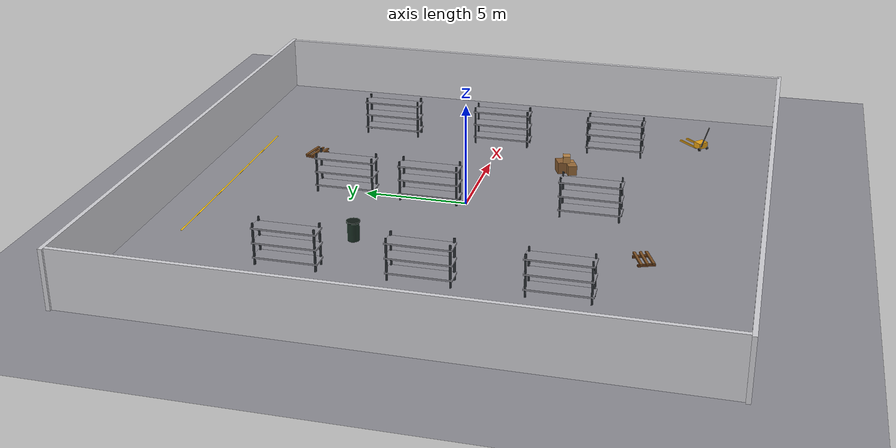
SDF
<?xml version="1.0"?>
<sdf version="1.11">
  <world name="benchmark_warehouse_medium">
    <physics name="1ms" type="ignored"><max_step_size>0.001</max_step_size><real_time_factor>1.0</real_time_factor></physics>
    <plugin filename="gz-sim-physics-system" name="gz::sim::systems::Physics"/>
    <plugin filename="gz-sim-sensors-system" name="gz::sim::systems::Sensors"><render_engine>ogre2</render_engine></plugin>
    <plugin filename="gz-sim-scene-broadcaster-system" name="gz::sim::systems::SceneBroadcaster"/>
    <plugin filename="gz-sim-user-commands-system" name="gz::sim::systems::UserCommands"/>
    <plugin filename="gz-sim-imu-system" name="gz::sim::systems::Imu"/>
    <model name="ground_plane"><static>true</static><link name="link"><collision name="collision"><geometry><plane><normal>0 0 1</normal><size>70 70</size></plane></geometry></collision><visual name="visual"><geometry><plane><normal>0 0 1</normal><size>70 70</size></plane></geometry><material><ambient>0.55 0.55 0.58 1</ambient><diffuse>0.55 0.55 0.58 1</diffuse></material></visual></link></model>
    <light name="sun" type="directional"><cast_shadows>true</cast_shadows><pose>0 0 12 0 0 0</pose><diffuse>0.85 0.85 0.85 1</diffuse><direction>-0.4 0.2 -0.9</direction></light>

    <model name="wall_north"><static>true</static><pose>0 14 1.4 0 0 0</pose><link name="link"><collision name="collision"><geometry><box><size>28.4 0.2 2.8</size></box></geometry></collision><visual name="visual"><geometry><box><size>28.4 0.2 2.8</size></box></geometry><material><ambient>0.82 0.82 0.84 1</ambient><diffuse>0.82 0.82 0.84 1</diffuse></material></visual></link></model>
    <model name="wall_south"><static>true</static><pose>0 -14 1.4 0 0 0</pose><link name="link"><collision name="collision"><geometry><box><size>28.4 0.2 2.8</size></box></geometry></collision><visual name="visual"><geometry><box><size>28.4 0.2 2.8</size></box></geometry><material><ambient>0.82 0.82 0.84 1</ambient><diffuse>0.82 0.82 0.84 1</diffuse></material></visual></link></model>
    <model name="wall_east"><static>true</static><pose>14 0 1.4 0 0 0</pose><link name="link"><collision name="collision"><geometry><box><size>0.2 28.0 2.8</size></box></geometry></collision><visual name="visual"><geometry><box><size>0.2 28.0 2.8</size></box></geometry><material><ambient>0.82 0.82 0.84 1</ambient><diffuse>0.82 0.82 0.84 1</diffuse></material></visual></link></model>
    <model name="wall_west"><static>true</static><pose>-14 0 1.4 0 0 0</pose><link name="link"><collision name="collision"><geometry><box><size>0.2 28.0 2.8</size></box></geometry></collision><visual name="visual"><geometry><box><size>0.2 28.0 2.8</size></box></geometry><material><ambient>0.82 0.82 0.84 1</ambient><diffuse>0.82 0.82 0.84 1</diffuse></material></visual></link></model>

    <include><name>shelf_medium_01</name><uri>model://warehouse_shelf</uri><pose>-8 6 0 0 0 1.5708</pose></include>
    <include><name>shelf_medium_02</name><uri>model://warehouse_shelf</uri><pose>-8 0 0 0 0 1.5708</pose></include>
    <include><name>shelf_medium_03</name><uri>model://warehouse_shelf</uri><pose>-8 -6 0 0 0 1.5708</pose></include>
    <include><name>shelf_medium_04</name><uri>model://warehouse_shelf</uri><pose>0 6 0 0 0 1.5708</pose></include>
    <include><name>shelf_medium_05</name><uri>model://warehouse_shelf</uri><pose>0 1.8 0 0 0 1.5708</pose></include>
    <include><name>shelf_medium_06</name><uri>model://warehouse_shelf</uri><pose>0 -6 0 0 0 1.5708</pose></include>
    <include><name>shelf_medium_07</name><uri>model://warehouse_shelf</uri><pose>8 6 0 0 0 1.5708</pose></include>
    <include><name>shelf_medium_08</name><uri>model://warehouse_shelf</uri><pose>8 0 0 0 0 1.5708</pose></include>
    <include><name>shelf_medium_09</name><uri>model://warehouse_shelf</uri><pose>8 -6 0 0 0 1.5708</pose></include>
    <include><name>pallet_medium_01</name><uri>model://warehouse_pallet</uri><pose>-4 -9 0 0 0 0.4</pose></include>
    <include><name>pallet_medium_02</name><uri>model://warehouse_pallet</uri><pose>4 9 0 0 0 -0.2</pose></include>
    <include><name>box_cluster_medium_01</name><uri>model://warehouse_box_cluster</uri><pose>5 -4 0 0 0 0.3</pose></include>
    <include><name>trash_bin_medium_01</name><uri>model://warehouse_trash_bin</uri><pose>-5 4 0 0 0 0</pose></include>
    <include><name>pallet_jack_medium_01</name><uri>model://warehouse_pallet_jack</uri><pose>10 -10 0 0 0 0.8</pose></include>
    <include><name>floor_marking_medium_01</name><uri>model://warehouse_floor_marking</uri><pose>-4 12 0 0 0 0</pose></include>
    <include><name>floor_marking_medium_02</name><uri>model://warehouse_floor_marking</uri><pose>0 12 0 0 0 0</pose></include>
    <include><name>floor_marking_medium_03</name><uri>model://warehouse_floor_marking</uri><pose>4 12 0 0 0 0</pose></include>
  </world>
</sdf>

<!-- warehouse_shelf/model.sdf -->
<sdf version="1.11">
  <model name="warehouse_shelf">
    <static>true</static>
    <link name="link">
      <collision name="collision">
        <geometry><box><size>3.0 0.8 2.0</size></box></geometry>
        <pose>0 0 1.0 0 0 0</pose>
      </collision>
      <visual name="upright_left"><pose>-1.4 -0.35 1.0 0 0 0</pose><geometry><box><size>0.08 0.08 2.0</size></box></geometry><material><ambient>0.18 0.20 0.22 1</ambient><diffuse>0.18 0.20 0.22 1</diffuse></material></visual>
      <visual name="upright_right"><pose>1.4 -0.35 1.0 0 0 0</pose><geometry><box><size>0.08 0.08 2.0</size></box></geometry><material><ambient>0.18 0.20 0.22 1</ambient><diffuse>0.18 0.20 0.22 1</diffuse></material></visual>
      <visual name="upright_back_left"><pose>-1.4 0.35 1.0 0 0 0</pose><geometry><box><size>0.08 0.08 2.0</size></box></geometry><material><ambient>0.18 0.20 0.22 1</ambient><diffuse>0.18 0.20 0.22 1</diffuse></material></visual>
      <visual name="upright_back_right"><pose>1.4 0.35 1.0 0 0 0</pose><geometry><box><size>0.08 0.08 2.0</size></box></geometry><material><ambient>0.18 0.20 0.22 1</ambient><diffuse>0.18 0.20 0.22 1</diffuse></material></visual>
      <visual name="shelf_bottom"><pose>0 0 0.35 0 0 0</pose><geometry><box><size>3.0 0.8 0.08</size></box></geometry><material><ambient>0.55 0.55 0.58 1</ambient><diffuse>0.55 0.55 0.58 1</diffuse></material></visual>
      <visual name="shelf_middle"><pose>0 0 1.05 0 0 0</pose><geometry><box><size>3.0 0.8 0.08</size></box></geometry><material><ambient>0.55 0.55 0.58 1</ambient><diffuse>0.55 0.55 0.58 1</diffuse></material></visual>
      <visual name="shelf_top"><pose>0 0 1.75 0 0 0</pose><geometry><box><size>3.0 0.8 0.08</size></box></geometry><material><ambient>0.55 0.55 0.58 1</ambient><diffuse>0.55 0.55 0.58 1</diffuse></material></visual>
    </link>
  </model>
</sdf>

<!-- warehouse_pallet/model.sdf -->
<sdf version="1.11">
  <model name="warehouse_pallet">
    <static>true</static>
    <link name="link">
      <collision name="collision"><pose>0 0 0.09 0 0 0</pose><geometry><box><size>1.2 0.8 0.18</size></box></geometry></collision>
      <visual name="deck_front"><pose>0 -0.28 0.18 0 0 0</pose><geometry><box><size>1.2 0.12 0.08</size></box></geometry><material><ambient>0.50 0.32 0.14 1</ambient><diffuse>0.50 0.32 0.14 1</diffuse></material></visual>
      <visual name="deck_mid"><pose>0 0 0.18 0 0 0</pose><geometry><box><size>1.2 0.12 0.08</size></box></geometry><material><ambient>0.50 0.32 0.14 1</ambient><diffuse>0.50 0.32 0.14 1</diffuse></material></visual>
      <visual name="deck_back"><pose>0 0.28 0.18 0 0 0</pose><geometry><box><size>1.2 0.12 0.08</size></box></geometry><material><ambient>0.50 0.32 0.14 1</ambient><diffuse>0.50 0.32 0.14 1</diffuse></material></visual>
      <visual name="runner_left"><pose>-0.42 0 0.06 0 0 0</pose><geometry><box><size>0.12 0.8 0.10</size></box></geometry><material><ambient>0.42 0.24 0.10 1</ambient><diffuse>0.42 0.24 0.10 1</diffuse></material></visual>
      <visual name="runner_right"><pose>0.42 0 0.06 0 0 0</pose><geometry><box><size>0.12 0.8 0.10</size></box></geometry><material><ambient>0.42 0.24 0.10 1</ambient><diffuse>0.42 0.24 0.10 1</diffuse></material></visual>
    </link>
  </model>
</sdf>

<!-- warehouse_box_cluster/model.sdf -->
<sdf version="1.11">
  <model name="warehouse_box_cluster">
    <static>true</static>
    <link name="link">
      <collision name="collision"><pose>0 0 0.35 0 0 0</pose><geometry><box><size>1.2 1.0 0.7</size></box></geometry></collision>
      <visual name="box_a"><pose>-0.25 -0.20 0.25 0 0 0.08</pose><geometry><box><size>0.55 0.45 0.50</size></box></geometry><material><ambient>0.60 0.42 0.22 1</ambient><diffuse>0.60 0.42 0.22 1</diffuse></material></visual>
      <visual name="box_b"><pose>0.35 -0.15 0.20 0 0 -0.04</pose><geometry><box><size>0.45 0.50 0.40</size></box></geometry><material><ambient>0.68 0.48 0.25 1</ambient><diffuse>0.68 0.48 0.25 1</diffuse></material></visual>
      <visual name="box_c"><pose>0.05 0.30 0.30 0 0 0.12</pose><geometry><box><size>0.65 0.45 0.60</size></box></geometry><material><ambient>0.56 0.38 0.20 1</ambient><diffuse>0.56 0.38 0.20 1</diffuse></material></visual>
      <visual name="box_d"><pose>-0.15 0.05 0.78 0 0 -0.10</pose><geometry><box><size>0.45 0.35 0.35</size></box></geometry><material><ambient>0.72 0.52 0.28 1</ambient><diffuse>0.72 0.52 0.28 1</diffuse></material></visual>
    </link>
  </model>
</sdf>

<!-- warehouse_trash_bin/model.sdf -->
<sdf version="1.11">
  <model name="warehouse_trash_bin">
    <static>true</static>
    <link name="link">
      <collision name="collision"><pose>0 0 0.45 0 0 0</pose><geometry><cylinder><radius>0.28</radius><length>0.9</length></cylinder></geometry></collision>
      <visual name="body"><pose>0 0 0.45 0 0 0</pose><geometry><cylinder><radius>0.28</radius><length>0.9</length></cylinder></geometry><material><ambient>0.10 0.18 0.14 1</ambient><diffuse>0.10 0.18 0.14 1</diffuse></material></visual>
      <visual name="lid"><pose>0 0 0.93 0 0 0</pose><geometry><cylinder><radius>0.32</radius><length>0.06</length></cylinder></geometry><material><ambient>0.06 0.10 0.08 1</ambient><diffuse>0.06 0.10 0.08 1</diffuse></material></visual>
    </link>
  </model>
</sdf>

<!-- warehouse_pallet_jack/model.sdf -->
<sdf version="1.11">
  <model name="warehouse_pallet_jack">
    <static>true</static>
    <link name="link">
      <collision name="collision"><pose>0 0 0.25 0 0 0</pose><geometry><box><size>1.6 0.7 0.5</size></box></geometry></collision>
      <visual name="fork_left"><pose>0.25 -0.22 0.08 0 0 0</pose><geometry><box><size>1.3 0.08 0.08</size></box></geometry><material><ambient>0.92 0.65 0.08 1</ambient><diffuse>0.92 0.65 0.08 1</diffuse></material></visual>
      <visual name="fork_right"><pose>0.25 0.22 0.08 0 0 0</pose><geometry><box><size>1.3 0.08 0.08</size></box></geometry><material><ambient>0.92 0.65 0.08 1</ambient><diffuse>0.92 0.65 0.08 1</diffuse></material></visual>
      <visual name="body"><pose>-0.45 0 0.25 0 0 0</pose><geometry><box><size>0.45 0.55 0.30</size></box></geometry><material><ambient>0.92 0.65 0.08 1</ambient><diffuse>0.92 0.65 0.08 1</diffuse></material></visual>
      <visual name="handle"><pose>-0.75 0 0.75 0.45 0 0</pose><geometry><cylinder><radius>0.035</radius><length>1.1</length></cylinder></geometry><material><ambient>0.08 0.08 0.08 1</ambient><diffuse>0.08 0.08 0.08 1</diffuse></material></visual>
      <visual name="wheel_left"><pose>-0.65 -0.25 0.08 1.5708 0 0</pose><geometry><cylinder><radius>0.09</radius><length>0.06</length></cylinder></geometry><material><ambient>0.03 0.03 0.03 1</ambient><diffuse>0.03 0.03 0.03 1</diffuse></material></visual>
      <visual name="wheel_right"><pose>-0.65 0.25 0.08 1.5708 0 0</pose><geometry><cylinder><radius>0.09</radius><length>0.06</length></cylinder></geometry><material><ambient>0.03 0.03 0.03 1</ambient><diffuse>0.03 0.03 0.03 1</diffuse></material></visual>
    </link>
  </model>
</sdf>

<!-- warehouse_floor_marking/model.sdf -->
<sdf version="1.11">
  <model name="warehouse_floor_marking">
    <static>true</static>
    <link name="link">
      <visual name="strip"><pose>0 0 0.004 0 0 0</pose><geometry><box><size>4.0 0.08 0.004</size></box></geometry><material><ambient>1.0 0.78 0.05 1</ambient><diffuse>1.0 0.78 0.05 1</diffuse><emissive>0.12 0.09 0.0 1</emissive></material></visual>
    </link>
  </model>
</sdf>
